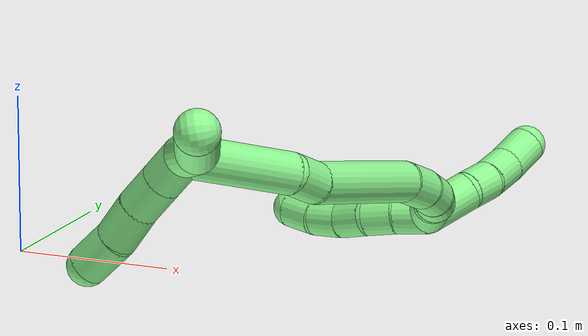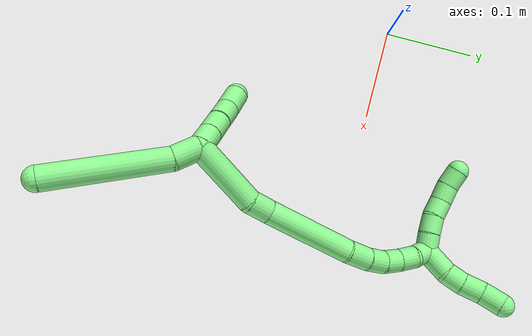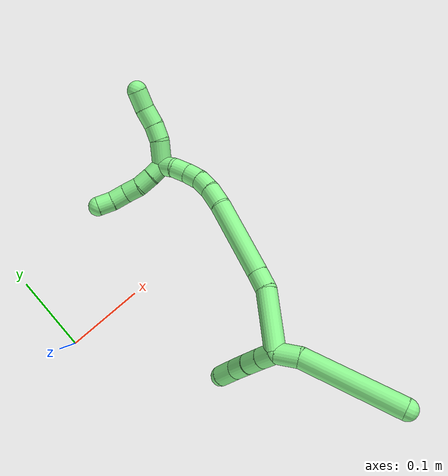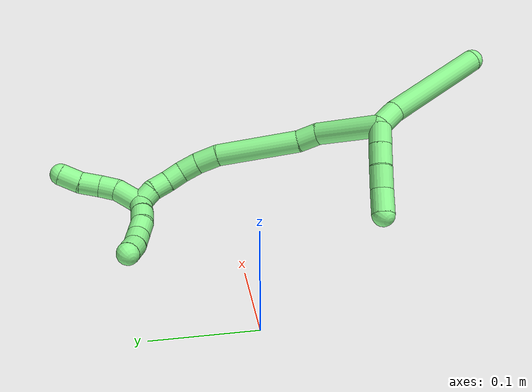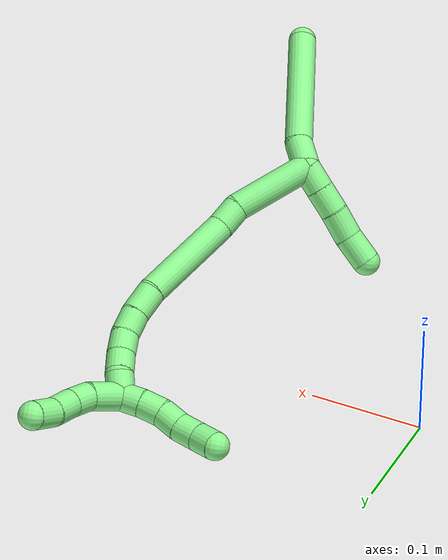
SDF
<sdf version="1.7">
 <world name="default">
  <model name="13">
   <static>0</static>
   <link name="13">
    <collision name="collision-cylinder-e_1_2_8">
     <pose>-0.005099 -0.012525 0.004434 1.23054 -0.366438 -0.260451</pose>
     <geometry><cylinder><radius>0.0125</radius><length>0.028462</length></cylinder></geometry>
     <surface>
      <friction><ode><mu>1.16</mu><mu2>1.16</mu2><slip1>0</slip1><slip2>0</slip2></ode></friction>
      <contact><ode><kp>1e+06</kp><kd>1</kd><max_vel>0</max_vel><min_depth>0.001</min_depth></ode></contact>
     </surface>
    </collision>
    <visual name="visual-cylinder-e_1_2_8">
     <pose>-0.005099 -0.012525 0.004434 1.23054 -0.366438 -0.260451</pose>
     <geometry><cylinder><radius>0.0125</radius><length>0.028462</length></cylinder></geometry>
     <material><ambient>0.564706 0.984314 0.572549 1</ambient></material>
    </visual>
    <collision name="collision-cylinder-e_2_8_6">
     <pose>-0.035852 -0.080027 0.012361 1.50736 -0.435826 -0.409786</pose>
     <geometry><cylinder><radius>0.0125</radius><length>0.121538</length></cylinder></geometry>
     <surface>
      <friction><ode><mu>1.16</mu><mu2>1.16</mu2><slip1>0</slip1><slip2>0</slip2></ode></friction>
      <contact><ode><kp>1e+06</kp><kd>1</kd><max_vel>0</max_vel><min_depth>0.001</min_depth></ode></contact>
     </surface>
    </collision>
    <visual name="visual-cylinder-e_2_8_6">
     <pose>-0.035852 -0.080027 0.012361 1.50736 -0.435826 -0.409786</pose>
     <geometry><cylinder><radius>0.0125</radius><length>0.121538</length></cylinder></geometry>
     <material><ambient>0.564706 0.984314 0.572549 1</ambient></material>
    </visual>
    <collision name="collision-cylinder-e_1_2_9">
     <pose>0.00769 0.003794 -0.007492 -2.6728 0.741395 -2.03975</pose>
     <geometry><cylinder><radius>0.0125</radius><length>0.022774</length></cylinder></geometry>
     <surface>
      <friction><ode><mu>1.16</mu><mu2>1.16</mu2><slip1>0</slip1><slip2>0</slip2></ode></friction>
      <contact><ode><kp>1e+06</kp><kd>1</kd><max_vel>0</max_vel><min_depth>0.001</min_depth></ode></contact>
     </surface>
    </collision>
    <visual name="visual-cylinder-e_1_2_9">
     <pose>0.00769 0.003794 -0.007492 -2.6728 0.741395 -2.03975</pose>
     <geometry><cylinder><radius>0.0125</radius><length>0.022774</length></cylinder></geometry>
     <material><ambient>0.564706 0.984314 0.572549 1</ambient></material>
    </visual>
    <collision name="collision-cylinder-e_2_9_10">
     <pose>0.023481 0.011344 -0.022983 -2.70263 0.742027 -2.1003</pose>
     <geometry><cylinder><radius>0.0125</radius><length>0.023975</length></cylinder></geometry>
     <surface>
      <friction><ode><mu>1.16</mu><mu2>1.16</mu2><slip1>0</slip1><slip2>0</slip2></ode></friction>
      <contact><ode><kp>1e+06</kp><kd>1</kd><max_vel>0</max_vel><min_depth>0.001</min_depth></ode></contact>
     </surface>
    </collision>
    <visual name="visual-cylinder-e_2_9_10">
     <pose>0.023481 0.011344 -0.022983 -2.70263 0.742027 -2.1003</pose>
     <geometry><cylinder><radius>0.0125</radius><length>0.023975</length></cylinder></geometry>
     <material><ambient>0.564706 0.984314 0.572549 1</ambient></material>
    </visual>
    <collision name="collision-cylinder-e_3_10_11">
     <pose>0.041158 0.01829 -0.03908 -2.76636 0.833064 -2.3309</pose>
     <geometry><cylinder><radius>0.0125</radius><length>0.025883</length></cylinder></geometry>
     <surface>
      <friction><ode><mu>1.16</mu><mu2>1.16</mu2><slip1>0</slip1><slip2>0</slip2></ode></friction>
      <contact><ode><kp>1e+06</kp><kd>1</kd><max_vel>0</max_vel><min_depth>0.001</min_depth></ode></contact>
     </surface>
    </collision>
    <visual name="visual-cylinder-e_3_10_11">
     <pose>0.041158 0.01829 -0.03908 -2.76636 0.833064 -2.3309</pose>
     <geometry><cylinder><radius>0.0125</radius><length>0.025883</length></cylinder></geometry>
     <material><ambient>0.564706 0.984314 0.572549 1</ambient></material>
    </visual>
    <collision name="collision-cylinder-e_4_11_5">
     <pose>0.059236 0.02604 -0.056884 -2.70228 0.670302 -2.00153</pose>
     <geometry><cylinder><radius>0.0125</radius><length>0.027368</length></cylinder></geometry>
     <surface>
      <friction><ode><mu>1.16</mu><mu2>1.16</mu2><slip1>0</slip1><slip2>0</slip2></ode></friction>
      <contact><ode><kp>1e+06</kp><kd>1</kd><max_vel>0</max_vel><min_depth>0.001</min_depth></ode></contact>
     </surface>
    </collision>
    <visual name="visual-cylinder-e_4_11_5">
     <pose>0.059236 0.02604 -0.056884 -2.70228 0.670302 -2.00153</pose>
     <geometry><cylinder><radius>0.0125</radius><length>0.027368</length></cylinder></geometry>
     <material><ambient>0.564706 0.984314 0.572549 1</ambient></material>
    </visual>
    <collision name="collision-cylinder-e_1_2_12">
     <pose>0.016791 0.017148 0.028135 -0.547359 0.471299 -0.134606</pose>
     <geometry><cylinder><radius>0.0125</radius><length>0.073962</length></cylinder></geometry>
     <surface>
      <friction><ode><mu>1.16</mu><mu2>1.16</mu2><slip1>0</slip1><slip2>0</slip2></ode></friction>
      <contact><ode><kp>1e+06</kp><kd>1</kd><max_vel>0</max_vel><min_depth>0.001</min_depth></ode></contact>
     </surface>
    </collision>
    <visual name="visual-cylinder-e_1_2_12">
     <pose>0.016791 0.017148 0.028135 -0.547359 0.471299 -0.134606</pose>
     <geometry><cylinder><radius>0.0125</radius><length>0.073962</length></cylinder></geometry>
     <material><ambient>0.564706 0.984314 0.572549 1</ambient></material>
    </visual>
    <collision name="collision-cylinder-e_2_12_13">
     <pose>0.040463 0.041983 0.062278 -0.907491 0.614263 -0.306922</pose>
     <geometry><cylinder><radius>0.0125</radius><length>0.023877</length></cylinder></geometry>
     <surface>
      <friction><ode><mu>1.16</mu><mu2>1.16</mu2><slip1>0</slip1><slip2>0</slip2></ode></friction>
      <contact><ode><kp>1e+06</kp><kd>1</kd><max_vel>0</max_vel><min_depth>0.001</min_depth></ode></contact>
     </surface>
    </collision>
    <visual name="visual-cylinder-e_2_12_13">
     <pose>0.040463 0.041983 0.062278 -0.907491 0.614263 -0.306922</pose>
     <geometry><cylinder><radius>0.0125</radius><length>0.023877</length></cylinder></geometry>
     <material><ambient>0.564706 0.984314 0.572549 1</ambient></material>
    </visual>
    <collision name="collision-cylinder-e_3_13_14">
     <pose>0.06514 0.085136 0.09406 -0.942335 0.385588 -0.198251</pose>
     <geometry><cylinder><radius>0.0125</radius><length>0.094631</length></cylinder></geometry>
     <surface>
      <friction><ode><mu>1.16</mu><mu2>1.16</mu2><slip1>0</slip1><slip2>0</slip2></ode></friction>
      <contact><ode><kp>1e+06</kp><kd>1</kd><max_vel>0</max_vel><min_depth>0.001</min_depth></ode></contact>
     </surface>
    </collision>
    <visual name="visual-cylinder-e_3_13_14">
     <pose>0.06514 0.085136 0.09406 -0.942335 0.385588 -0.198251</pose>
     <geometry><cylinder><radius>0.0125</radius><length>0.094631</length></cylinder></geometry>
     <material><ambient>0.564706 0.984314 0.572549 1</ambient></material>
    </visual>
    <collision name="collision-cylinder-e_4_14_15">
     <pose>0.089913 0.129891 0.125395 -1.03146 0.572467 -0.330652</pose>
     <geometry><cylinder><radius>0.0125</radius><length>0.025762</length></cylinder></geometry>
     <surface>
      <friction><ode><mu>1.16</mu><mu2>1.16</mu2><slip1>0</slip1><slip2>0</slip2></ode></friction>
      <contact><ode><kp>1e+06</kp><kd>1</kd><max_vel>0</max_vel><min_depth>0.001</min_depth></ode></contact>
     </surface>
    </collision>
    <visual name="visual-cylinder-e_4_14_15">
     <pose>0.089913 0.129891 0.125395 -1.03146 0.572467 -0.330652</pose>
     <geometry><cylinder><radius>0.0125</radius><length>0.025762</length></cylinder></geometry>
     <material><ambient>0.564706 0.984314 0.572549 1</ambient></material>
    </visual>
    <collision name="collision-cylinder-e_5_15_16">
     <pose>0.103162 0.14728 0.133934 -1.21833 0.62854 -0.446007</pose>
     <geometry><cylinder><radius>0.0125</radius><length>0.021334</length></cylinder></geometry>
     <surface>
      <friction><ode><mu>1.16</mu><mu2>1.16</mu2><slip1>0</slip1><slip2>0</slip2></ode></friction>
      <contact><ode><kp>1e+06</kp><kd>1</kd><max_vel>0</max_vel><min_depth>0.001</min_depth></ode></contact>
     </surface>
    </collision>
    <visual name="visual-cylinder-e_5_15_16">
     <pose>0.103162 0.14728 0.133934 -1.21833 0.62854 -0.446007</pose>
     <geometry><cylinder><radius>0.0125</radius><length>0.021334</length></cylinder></geometry>
     <material><ambient>0.564706 0.984314 0.572549 1</ambient></material>
    </visual>
    <collision name="collision-cylinder-e_6_16_17">
     <pose>0.114798 0.163942 0.137303 -1.5253 0.559024 -0.53535</pose>
     <geometry><cylinder><radius>0.0125</radius><length>0.020226</length></cylinder></geometry>
     <surface>
      <friction><ode><mu>1.16</mu><mu2>1.16</mu2><slip1>0</slip1><slip2>0</slip2></ode></friction>
      <contact><ode><kp>1e+06</kp><kd>1</kd><max_vel>0</max_vel><min_depth>0.001</min_depth></ode></contact>
     </surface>
    </collision>
    <visual name="visual-cylinder-e_6_16_17">
     <pose>0.114798 0.163942 0.137303 -1.5253 0.559024 -0.53535</pose>
     <geometry><cylinder><radius>0.0125</radius><length>0.020226</length></cylinder></geometry>
     <material><ambient>0.564706 0.984314 0.572549 1</ambient></material>
    </visual>
    <collision name="collision-cylinder-e_7_17_18">
     <pose>0.124061 0.181736 0.137182 -1.62608 0.399247 -0.421305</pose>
     <geometry><cylinder><radius>0.0125</radius><length>0.020063</length></cylinder></geometry>
     <surface>
      <friction><ode><mu>1.16</mu><mu2>1.16</mu2><slip1>0</slip1><slip2>0</slip2></ode></friction>
      <contact><ode><kp>1e+06</kp><kd>1</kd><max_vel>0</max_vel><min_depth>0.001</min_depth></ode></contact>
     </surface>
    </collision>
    <visual name="visual-cylinder-e_7_17_18">
     <pose>0.124061 0.181736 0.137182 -1.62608 0.399247 -0.421305</pose>
     <geometry><cylinder><radius>0.0125</radius><length>0.020063</length></cylinder></geometry>
     <material><ambient>0.564706 0.984314 0.572549 1</ambient></material>
    </visual>
    <collision name="collision-cylinder-e_8_18_1">
     <pose>0.134218 0.198582 0.13461 -1.83506 0.670369 -0.854193</pose>
     <geometry><cylinder><radius>0.0125</radius><length>0.020144</length></cylinder></geometry>
     <surface>
      <friction><ode><mu>1.16</mu><mu2>1.16</mu2><slip1>0</slip1><slip2>0</slip2></ode></friction>
      <contact><ode><kp>1e+06</kp><kd>1</kd><max_vel>0</max_vel><min_depth>0.001</min_depth></ode></contact>
     </surface>
    </collision>
    <visual name="visual-cylinder-e_8_18_1">
     <pose>0.134218 0.198582 0.13461 -1.83506 0.670369 -0.854193</pose>
     <geometry><cylinder><radius>0.0125</radius><length>0.020144</length></cylinder></geometry>
     <material><ambient>0.564706 0.984314 0.572549 1</ambient></material>
    </visual>
    <collision name="collision-cylinder-e_1_1_19">
     <pose>0.138133 0.214449 0.146171 -0.544442 -0.146017 0.040828</pose>
     <geometry><cylinder><radius>0.0125</radius><length>0.032194</length></cylinder></geometry>
     <surface>
      <friction><ode><mu>1.16</mu><mu2>1.16</mu2><slip1>0</slip1><slip2>0</slip2></ode></friction>
      <contact><ode><kp>1e+06</kp><kd>1</kd><max_vel>0</max_vel><min_depth>0.001</min_depth></ode></contact>
     </surface>
    </collision>
    <visual name="visual-cylinder-e_1_1_19">
     <pose>0.138133 0.214449 0.146171 -0.544442 -0.146017 0.040828</pose>
     <geometry><cylinder><radius>0.0125</radius><length>0.032194</length></cylinder></geometry>
     <material><ambient>0.564706 0.984314 0.572549 1</ambient></material>
    </visual>
    <collision name="collision-cylinder-e_2_19_20">
     <pose>0.136117 0.229932 0.166811 -0.800674 0.032304 -0.013672</pose>
     <geometry><cylinder><radius>0.0125</radius><length>0.020166</length></cylinder></geometry>
     <surface>
      <friction><ode><mu>1.16</mu><mu2>1.16</mu2><slip1>0</slip1><slip2>0</slip2></ode></friction>
      <contact><ode><kp>1e+06</kp><kd>1</kd><max_vel>0</max_vel><min_depth>0.001</min_depth></ode></contact>
     </surface>
    </collision>
    <visual name="visual-cylinder-e_2_19_20">
     <pose>0.136117 0.229932 0.166811 -0.800674 0.032304 -0.013672</pose>
     <geometry><cylinder><radius>0.0125</radius><length>0.020166</length></cylinder></geometry>
     <material><ambient>0.564706 0.984314 0.572549 1</ambient></material>
    </visual>
    <collision name="collision-cylinder-e_3_20_21">
     <pose>0.136282 0.246776 0.18053 -0.961755 -0.013699 0.007147</pose>
     <geometry><cylinder><radius>0.0125</radius><length>0.023434</length></cylinder></geometry>
     <surface>
      <friction><ode><mu>1.16</mu><mu2>1.16</mu2><slip1>0</slip1><slip2>0</slip2></ode></friction>
      <contact><ode><kp>1e+06</kp><kd>1</kd><max_vel>0</max_vel><min_depth>0.001</min_depth></ode></contact>
     </surface>
    </collision>
    <visual name="visual-cylinder-e_3_20_21">
     <pose>0.136282 0.246776 0.18053 -0.961755 -0.013699 0.007147</pose>
     <geometry><cylinder><radius>0.0125</radius><length>0.023434</length></cylinder></geometry>
     <material><ambient>0.564706 0.984314 0.572549 1</ambient></material>
    </visual>
    <collision name="collision-cylinder-e_4_21_4">
     <pose>0.133717 0.265256 0.195107 -0.844861 -0.200036 0.090154</pose>
     <geometry><cylinder><radius>0.0125</radius><length>0.024205</length></cylinder></geometry>
     <surface>
      <friction><ode><mu>1.16</mu><mu2>1.16</mu2><slip1>0</slip1><slip2>0</slip2></ode></friction>
      <contact><ode><kp>1e+06</kp><kd>1</kd><max_vel>0</max_vel><min_depth>0.001</min_depth></ode></contact>
     </surface>
    </collision>
    <visual name="visual-cylinder-e_4_21_4">
     <pose>0.133717 0.265256 0.195107 -0.844861 -0.200036 0.090154</pose>
     <geometry><cylinder><radius>0.0125</radius><length>0.024205</length></cylinder></geometry>
     <material><ambient>0.564706 0.984314 0.572549 1</ambient></material>
    </visual>
    <collision name="collision-cylinder-e_1_1_22">
     <pose>0.140234 0.20963 0.123158 -2.79142 -0.024135 0.136229</pose>
     <geometry><cylinder><radius>0.0125</radius><length>0.02</length></cylinder></geometry>
     <surface>
      <friction><ode><mu>1.16</mu><mu2>1.16</mu2><slip1>0</slip1><slip2>0</slip2></ode></friction>
      <contact><ode><kp>1e+06</kp><kd>1</kd><max_vel>0</max_vel><min_depth>0.001</min_depth></ode></contact>
     </surface>
    </collision>
    <visual name="visual-cylinder-e_1_1_22">
     <pose>0.140234 0.20963 0.123158 -2.79142 -0.024135 0.136229</pose>
     <geometry><cylinder><radius>0.0125</radius><length>0.02</length></cylinder></geometry>
     <material><ambient>0.564706 0.984314 0.572549 1</ambient></material>
    </visual>
    <collision name="collision-cylinder-e_2_22_23">
     <pose>0.140671 0.217168 0.104675 -2.71725 0.067882 -0.312673</pose>
     <geometry><cylinder><radius>0.0125</radius><length>0.02</length></cylinder></geometry>
     <surface>
      <friction><ode><mu>1.16</mu><mu2>1.16</mu2><slip1>0</slip1><slip2>0</slip2></ode></friction>
      <contact><ode><kp>1e+06</kp><kd>1</kd><max_vel>0</max_vel><min_depth>0.001</min_depth></ode></contact>
     </surface>
    </collision>
    <visual name="visual-cylinder-e_2_22_23">
     <pose>0.140671 0.217168 0.104675 -2.71725 0.067882 -0.312673</pose>
     <geometry><cylinder><radius>0.0125</radius><length>0.02</length></cylinder></geometry>
     <material><ambient>0.564706 0.984314 0.572549 1</ambient></material>
    </visual>
    <collision name="collision-cylinder-e_3_23_24">
     <pose>0.143164 0.227216 0.087746 -2.49302 0.182499 -0.531537</pose>
     <geometry><cylinder><radius>0.0125</radius><length>0.02</length></cylinder></geometry>
     <surface>
      <friction><ode><mu>1.16</mu><mu2>1.16</mu2><slip1>0</slip1><slip2>0</slip2></ode></friction>
      <contact><ode><kp>1e+06</kp><kd>1</kd><max_vel>0</max_vel><min_depth>0.001</min_depth></ode></contact>
     </surface>
    </collision>
    <visual name="visual-cylinder-e_3_23_24">
     <pose>0.143164 0.227216 0.087746 -2.49302 0.182499 -0.531537</pose>
     <geometry><cylinder><radius>0.0125</radius><length>0.02</length></cylinder></geometry>
     <material><ambient>0.564706 0.984314 0.572549 1</ambient></material>
    </visual>
    <collision name="collision-cylinder-e_4_24_25">
     <pose>0.144949 0.238868 0.071701 -2.53355 -0.002979 0.009495</pose>
     <geometry><cylinder><radius>0.0125</radius><length>0.02</length></cylinder></geometry>
     <surface>
      <friction><ode><mu>1.16</mu><mu2>1.16</mu2><slip1>0</slip1><slip2>0</slip2></ode></friction>
      <contact><ode><kp>1e+06</kp><kd>1</kd><max_vel>0</max_vel><min_depth>0.001</min_depth></ode></contact>
     </surface>
    </collision>
    <visual name="visual-cylinder-e_4_24_25">
     <pose>0.144949 0.238868 0.071701 -2.53355 -0.002979 0.009495</pose>
     <geometry><cylinder><radius>0.0125</radius><length>0.02</length></cylinder></geometry>
     <material><ambient>0.564706 0.984314 0.572549 1</ambient></material>
    </visual>
    <collision name="collision-cylinder-e_5_25_3">
     <pose>0.143615 0.251541 0.056432 -2.36345 -0.130801 0.316828</pose>
     <geometry><cylinder><radius>0.0125</radius><length>0.02</length></cylinder></geometry>
     <surface>
      <friction><ode><mu>1.16</mu><mu2>1.16</mu2><slip1>0</slip1><slip2>0</slip2></ode></friction>
      <contact><ode><kp>1e+06</kp><kd>1</kd><max_vel>0</max_vel><min_depth>0.001</min_depth></ode></contact>
     </surface>
    </collision>
    <visual name="visual-cylinder-e_5_25_3">
     <pose>0.143615 0.251541 0.056432 -2.36345 -0.130801 0.316828</pose>
     <geometry><cylinder><radius>0.0125</radius><length>0.02</length></cylinder></geometry>
     <material><ambient>0.564706 0.984314 0.572549 1</ambient></material>
    </visual>
    <collision name="collision-sphere-3">
     <pose>0.142311 0.2585 0.049371 0 -0 0</pose>
     <geometry><sphere><radius>0.0125</radius></sphere></geometry>
     <surface>
      <friction><ode><mu>1.16</mu><mu2>1.16</mu2><slip1>0</slip1><slip2>0</slip2></ode></friction>
      <contact><ode><kp>1e+06</kp><kd>1</kd><max_vel>0</max_vel><min_depth>0.001</min_depth></ode></contact>
     </surface>
    </collision>
    <visual name="visual-sphere-3">
     <pose>0.142311 0.2585 0.049371 0 -0 0</pose>
     <geometry><sphere><radius>0.0125</radius></sphere></geometry>
     <material><ambient>0.564706 0.984314 0.572549 1</ambient></material>
    </visual>
    <collision name="collision-sphere-25">
     <pose>0.144919 0.244581 0.063494 0 -0 0</pose>
     <geometry><sphere><radius>0.0125</radius></sphere></geometry>
     <surface>
      <friction><ode><mu>1.16</mu><mu2>1.16</mu2><slip1>0</slip1><slip2>0</slip2></ode></friction>
      <contact><ode><kp>1e+06</kp><kd>1</kd><max_vel>0</max_vel><min_depth>0.001</min_depth></ode></contact>
     </surface>
    </collision>
    <visual name="visual-sphere-25">
     <pose>0.144919 0.244581 0.063494 0 -0 0</pose>
     <geometry><sphere><radius>0.0125</radius></sphere></geometry>
     <material><ambient>0.564706 0.984314 0.572549 1</ambient></material>
    </visual>
    <collision name="collision-sphere-24">
     <pose>0.144979 0.233156 0.079909 0 -0 0</pose>
     <geometry><sphere><radius>0.0125</radius></sphere></geometry>
     <surface>
      <friction><ode><mu>1.16</mu><mu2>1.16</mu2><slip1>0</slip1><slip2>0</slip2></ode></friction>
      <contact><ode><kp>1e+06</kp><kd>1</kd><max_vel>0</max_vel><min_depth>0.001</min_depth></ode></contact>
     </surface>
    </collision>
    <visual name="visual-sphere-24">
     <pose>0.144979 0.233156 0.079909 0 -0 0</pose>
     <geometry><sphere><radius>0.0125</radius></sphere></geometry>
     <material><ambient>0.564706 0.984314 0.572549 1</ambient></material>
    </visual>
    <collision name="collision-sphere-23">
     <pose>0.141349 0.221275 0.095583 0 -0 0</pose>
     <geometry><sphere><radius>0.0125</radius></sphere></geometry>
     <surface>
      <friction><ode><mu>1.16</mu><mu2>1.16</mu2><slip1>0</slip1><slip2>0</slip2></ode></friction>
      <contact><ode><kp>1e+06</kp><kd>1</kd><max_vel>0</max_vel><min_depth>0.001</min_depth></ode></contact>
     </surface>
    </collision>
    <visual name="visual-sphere-23">
     <pose>0.141349 0.221275 0.095583 0 -0 0</pose>
     <geometry><sphere><radius>0.0125</radius></sphere></geometry>
     <material><ambient>0.564706 0.984314 0.572549 1</ambient></material>
    </visual>
    <collision name="collision-sphere-22">
     <pose>0.139993 0.21306 0.113767 0 -0 0</pose>
     <geometry><sphere><radius>0.0125</radius></sphere></geometry>
     <surface>
      <friction><ode><mu>1.16</mu><mu2>1.16</mu2><slip1>0</slip1><slip2>0</slip2></ode></friction>
      <contact><ode><kp>1e+06</kp><kd>1</kd><max_vel>0</max_vel><min_depth>0.001</min_depth></ode></contact>
     </surface>
    </collision>
    <visual name="visual-sphere-22">
     <pose>0.139993 0.21306 0.113767 0 -0 0</pose>
     <geometry><sphere><radius>0.0125</radius></sphere></geometry>
     <material><ambient>0.564706 0.984314 0.572549 1</ambient></material>
    </visual>
    <collision name="collision-sphere-4">
     <pose>0.131312 0.274127 0.20298 0 -0 0</pose>
     <geometry><sphere><radius>0.0125</radius></sphere></geometry>
     <surface>
      <friction><ode><mu>1.16</mu><mu2>1.16</mu2><slip1>0</slip1><slip2>0</slip2></ode></friction>
      <contact><ode><kp>1e+06</kp><kd>1</kd><max_vel>0</max_vel><min_depth>0.001</min_depth></ode></contact>
     </surface>
    </collision>
    <visual name="visual-sphere-4">
     <pose>0.131312 0.274127 0.20298 0 -0 0</pose>
     <geometry><sphere><radius>0.0125</radius></sphere></geometry>
     <material><ambient>0.564706 0.984314 0.572549 1</ambient></material>
    </visual>
    <collision name="collision-sphere-21">
     <pose>0.136121 0.256385 0.187233 0 -0 0</pose>
     <geometry><sphere><radius>0.0125</radius></sphere></geometry>
     <surface>
      <friction><ode><mu>1.16</mu><mu2>1.16</mu2><slip1>0</slip1><slip2>0</slip2></ode></friction>
      <contact><ode><kp>1e+06</kp><kd>1</kd><max_vel>0</max_vel><min_depth>0.001</min_depth></ode></contact>
     </surface>
    </collision>
    <visual name="visual-sphere-21">
     <pose>0.136121 0.256385 0.187233 0 -0 0</pose>
     <geometry><sphere><radius>0.0125</radius></sphere></geometry>
     <material><ambient>0.564706 0.984314 0.572549 1</ambient></material>
    </visual>
    <collision name="collision-sphere-20">
     <pose>0.136442 0.237166 0.173828 0 -0 0</pose>
     <geometry><sphere><radius>0.0125</radius></sphere></geometry>
     <surface>
      <friction><ode><mu>1.16</mu><mu2>1.16</mu2><slip1>0</slip1><slip2>0</slip2></ode></friction>
      <contact><ode><kp>1e+06</kp><kd>1</kd><max_vel>0</max_vel><min_depth>0.001</min_depth></ode></contact>
     </surface>
    </collision>
    <visual name="visual-sphere-20">
     <pose>0.136442 0.237166 0.173828 0 -0 0</pose>
     <geometry><sphere><radius>0.0125</radius></sphere></geometry>
     <material><ambient>0.564706 0.984314 0.572549 1</ambient></material>
    </visual>
    <collision name="collision-sphere-11">
     <pose>0.050735 0.02148 -0.047179 0 -0 0</pose>
     <geometry><sphere><radius>0.0125</radius></sphere></geometry>
     <surface>
      <friction><ode><mu>1.16</mu><mu2>1.16</mu2><slip1>0</slip1><slip2>0</slip2></ode></friction>
      <contact><ode><kp>1e+06</kp><kd>1</kd><max_vel>0</max_vel><min_depth>0.001</min_depth></ode></contact>
     </surface>
    </collision>
    <visual name="visual-sphere-11">
     <pose>0.050735 0.02148 -0.047179 0 -0 0</pose>
     <geometry><sphere><radius>0.0125</radius></sphere></geometry>
     <material><ambient>0.564706 0.984314 0.572549 1</ambient></material>
    </visual>
    <collision name="collision-sphere-10">
     <pose>0.031582 0.015099 -0.030981 0 -0 0</pose>
     <geometry><sphere><radius>0.0125</radius></sphere></geometry>
     <surface>
      <friction><ode><mu>1.16</mu><mu2>1.16</mu2><slip1>0</slip1><slip2>0</slip2></ode></friction>
      <contact><ode><kp>1e+06</kp><kd>1</kd><max_vel>0</max_vel><min_depth>0.001</min_depth></ode></contact>
     </surface>
    </collision>
    <visual name="visual-sphere-10">
     <pose>0.031582 0.015099 -0.030981 0 -0 0</pose>
     <geometry><sphere><radius>0.0125</radius></sphere></geometry>
     <material><ambient>0.564706 0.984314 0.572549 1</ambient></material>
    </visual>
    <collision name="collision-sphere-6">
     <pose>-0.061506 -0.135004 0.015853 0 -0 0</pose>
     <geometry><sphere><radius>0.0125</radius></sphere></geometry>
     <surface>
      <friction><ode><mu>1.16</mu><mu2>1.16</mu2><slip1>0</slip1><slip2>0</slip2></ode></friction>
      <contact><ode><kp>1e+06</kp><kd>1</kd><max_vel>0</max_vel><min_depth>0.001</min_depth></ode></contact>
     </surface>
    </collision>
    <visual name="visual-sphere-6">
     <pose>-0.061506 -0.135004 0.015853 0 -0 0</pose>
     <geometry><sphere><radius>0.0125</radius></sphere></geometry>
     <material><ambient>0.564706 0.984314 0.572549 1</ambient></material>
    </visual>
    <collision name="collision-sphere-9">
     <pose>0.01538 0.007589 -0.014984 0 -0 0</pose>
     <geometry><sphere><radius>0.0125</radius></sphere></geometry>
     <surface>
      <friction><ode><mu>1.16</mu><mu2>1.16</mu2><slip1>0</slip1><slip2>0</slip2></ode></friction>
      <contact><ode><kp>1e+06</kp><kd>1</kd><max_vel>0</max_vel><min_depth>0.001</min_depth></ode></contact>
     </surface>
    </collision>
    <visual name="visual-sphere-9">
     <pose>0.01538 0.007589 -0.014984 0 -0 0</pose>
     <geometry><sphere><radius>0.0125</radius></sphere></geometry>
     <material><ambient>0.564706 0.984314 0.572549 1</ambient></material>
    </visual>
    <collision name="collision-sphere-2">
     <geometry><sphere><radius>0.0125</radius></sphere></geometry>
     <surface>
      <friction><ode><mu>1.16</mu><mu2>1.16</mu2><slip1>0</slip1><slip2>0</slip2></ode></friction>
      <contact><ode><kp>1e+06</kp><kd>1</kd><max_vel>0</max_vel><min_depth>0.001</min_depth></ode></contact>
     </surface>
    </collision>
    <visual name="visual-sphere-2">
     <geometry><sphere><radius>0.0125</radius></sphere></geometry>
     <material><ambient>0.564706 0.984314 0.572549 1</ambient></material>
    </visual>
    <collision name="collision-sphere-19">
     <pose>0.135791 0.222698 0.159795 0 -0 0</pose>
     <geometry><sphere><radius>0.0125</radius></sphere></geometry>
     <surface>
      <friction><ode><mu>1.16</mu><mu2>1.16</mu2><slip1>0</slip1><slip2>0</slip2></ode></friction>
      <contact><ode><kp>1e+06</kp><kd>1</kd><max_vel>0</max_vel><min_depth>0.001</min_depth></ode></contact>
     </surface>
    </collision>
    <visual name="visual-sphere-19">
     <pose>0.135791 0.222698 0.159795 0 -0 0</pose>
     <geometry><sphere><radius>0.0125</radius></sphere></geometry>
     <material><ambient>0.564706 0.984314 0.572549 1</ambient></material>
    </visual>
    <collision name="collision-sphere-8">
     <pose>-0.010198 -0.025049 0.008868 0 -0 0</pose>
     <geometry><sphere><radius>0.0125</radius></sphere></geometry>
     <surface>
      <friction><ode><mu>1.16</mu><mu2>1.16</mu2><slip1>0</slip1><slip2>0</slip2></ode></friction>
      <contact><ode><kp>1e+06</kp><kd>1</kd><max_vel>0</max_vel><min_depth>0.001</min_depth></ode></contact>
     </surface>
    </collision>
    <visual name="visual-sphere-8">
     <pose>-0.010198 -0.025049 0.008868 0 -0 0</pose>
     <geometry><sphere><radius>0.0125</radius></sphere></geometry>
     <material><ambient>0.564706 0.984314 0.572549 1</ambient></material>
    </visual>
    <collision name="collision-sphere-5">
     <pose>0.067737 0.030601 -0.066589 0 -0 0</pose>
     <geometry><sphere><radius>0.0125</radius></sphere></geometry>
     <surface>
      <friction><ode><mu>1.16</mu><mu2>1.16</mu2><slip1>0</slip1><slip2>0</slip2></ode></friction>
      <contact><ode><kp>1e+06</kp><kd>1</kd><max_vel>0</max_vel><min_depth>0.001</min_depth></ode></contact>
     </surface>
    </collision>
    <visual name="visual-sphere-5">
     <pose>0.067737 0.030601 -0.066589 0 -0 0</pose>
     <geometry><sphere><radius>0.0125</radius></sphere></geometry>
     <material><ambient>0.564706 0.984314 0.572549 1</ambient></material>
    </visual>
    <collision name="collision-sphere-12">
     <pose>0.033582 0.034296 0.056271 0 -0 0</pose>
     <geometry><sphere><radius>0.0125</radius></sphere></geometry>
     <surface>
      <friction><ode><mu>1.16</mu><mu2>1.16</mu2><slip1>0</slip1><slip2>0</slip2></ode></friction>
      <contact><ode><kp>1e+06</kp><kd>1</kd><max_vel>0</max_vel><min_depth>0.001</min_depth></ode></contact>
     </surface>
    </collision>
    <visual name="visual-sphere-12">
     <pose>0.033582 0.034296 0.056271 0 -0 0</pose>
     <geometry><sphere><radius>0.0125</radius></sphere></geometry>
     <material><ambient>0.564706 0.984314 0.572549 1</ambient></material>
    </visual>
    <collision name="collision-sphere-13">
     <pose>0.047344 0.049671 0.068285 0 -0 0</pose>
     <geometry><sphere><radius>0.0125</radius></sphere></geometry>
     <surface>
      <friction><ode><mu>1.16</mu><mu2>1.16</mu2><slip1>0</slip1><slip2>0</slip2></ode></friction>
      <contact><ode><kp>1e+06</kp><kd>1</kd><max_vel>0</max_vel><min_depth>0.001</min_depth></ode></contact>
     </surface>
    </collision>
    <visual name="visual-sphere-13">
     <pose>0.047344 0.049671 0.068285 0 -0 0</pose>
     <geometry><sphere><radius>0.0125</radius></sphere></geometry>
     <material><ambient>0.564706 0.984314 0.572549 1</ambient></material>
    </visual>
    <collision name="collision-sphere-14">
     <pose>0.082935 0.120601 0.119834 0 -0 0</pose>
     <geometry><sphere><radius>0.0125</radius></sphere></geometry>
     <surface>
      <friction><ode><mu>1.16</mu><mu2>1.16</mu2><slip1>0</slip1><slip2>0</slip2></ode></friction>
      <contact><ode><kp>1e+06</kp><kd>1</kd><max_vel>0</max_vel><min_depth>0.001</min_depth></ode></contact>
     </surface>
    </collision>
    <visual name="visual-sphere-14">
     <pose>0.082935 0.120601 0.119834 0 -0 0</pose>
     <geometry><sphere><radius>0.0125</radius></sphere></geometry>
     <material><ambient>0.564706 0.984314 0.572549 1</ambient></material>
    </visual>
    <collision name="collision-sphere-15">
     <pose>0.096891 0.139182 0.130956 0 -0 0</pose>
     <geometry><sphere><radius>0.0125</radius></sphere></geometry>
     <surface>
      <friction><ode><mu>1.16</mu><mu2>1.16</mu2><slip1>0</slip1><slip2>0</slip2></ode></friction>
      <contact><ode><kp>1e+06</kp><kd>1</kd><max_vel>0</max_vel><min_depth>0.001</min_depth></ode></contact>
     </surface>
    </collision>
    <visual name="visual-sphere-15">
     <pose>0.096891 0.139182 0.130956 0 -0 0</pose>
     <geometry><sphere><radius>0.0125</radius></sphere></geometry>
     <material><ambient>0.564706 0.984314 0.572549 1</ambient></material>
    </visual>
    <collision name="collision-sphere-16">
     <pose>0.109434 0.155378 0.136913 0 -0 0</pose>
     <geometry><sphere><radius>0.0125</radius></sphere></geometry>
     <surface>
      <friction><ode><mu>1.16</mu><mu2>1.16</mu2><slip1>0</slip1><slip2>0</slip2></ode></friction>
      <contact><ode><kp>1e+06</kp><kd>1</kd><max_vel>0</max_vel><min_depth>0.001</min_depth></ode></contact>
     </surface>
    </collision>
    <visual name="visual-sphere-16">
     <pose>0.109434 0.155378 0.136913 0 -0 0</pose>
     <geometry><sphere><radius>0.0125</radius></sphere></geometry>
     <material><ambient>0.564706 0.984314 0.572549 1</ambient></material>
    </visual>
    <collision name="collision-sphere-17">
     <pose>0.120161 0.172507 0.137693 0 -0 0</pose>
     <geometry><sphere><radius>0.0125</radius></sphere></geometry>
     <surface>
      <friction><ode><mu>1.16</mu><mu2>1.16</mu2><slip1>0</slip1><slip2>0</slip2></ode></friction>
      <contact><ode><kp>1e+06</kp><kd>1</kd><max_vel>0</max_vel><min_depth>0.001</min_depth></ode></contact>
     </surface>
    </collision>
    <visual name="visual-sphere-17">
     <pose>0.120161 0.172507 0.137693 0 -0 0</pose>
     <geometry><sphere><radius>0.0125</radius></sphere></geometry>
     <material><ambient>0.564706 0.984314 0.572549 1</ambient></material>
    </visual>
    <collision name="collision-sphere-18">
     <pose>0.12796 0.190964 0.136671 0 -0 0</pose>
     <geometry><sphere><radius>0.0125</radius></sphere></geometry>
     <surface>
      <friction><ode><mu>1.16</mu><mu2>1.16</mu2><slip1>0</slip1><slip2>0</slip2></ode></friction>
      <contact><ode><kp>1e+06</kp><kd>1</kd><max_vel>0</max_vel><min_depth>0.001</min_depth></ode></contact>
     </surface>
    </collision>
    <visual name="visual-sphere-18">
     <pose>0.12796 0.190964 0.136671 0 -0 0</pose>
     <geometry><sphere><radius>0.0125</radius></sphere></geometry>
     <material><ambient>0.564706 0.984314 0.572549 1</ambient></material>
    </visual>
    <collision name="collision-sphere-1">
     <pose>0.140475 0.206201 0.132548 0 -0 0</pose>
     <geometry><sphere><radius>0.0125</radius></sphere></geometry>
     <surface>
      <friction><ode><mu>1.16</mu><mu2>1.16</mu2><slip1>0</slip1><slip2>0</slip2></ode></friction>
      <contact><ode><kp>1e+06</kp><kd>1</kd><max_vel>0</max_vel><min_depth>0.001</min_depth></ode></contact>
     </surface>
    </collision>
    <visual name="visual-sphere-1">
     <pose>0.140475 0.206201 0.132548 0 -0 0</pose>
     <geometry><sphere><radius>0.0125</radius></sphere></geometry>
     <material><ambient>0.564706 0.984314 0.572549 1</ambient></material>
    </visual>
    <inertial>
     <pose>0.062935 0.08783 0.068045 0 -0 0</pose>
     <mass>0.75</mass>
     <inertia><ixx>0.000178</ixx><ixy>0</ixy><ixz>0</ixz><iyy>6.2e-05</iyy><iyz>0</iyz><izz>6.5e-05</izz></inertia>
    </inertial>
   </link>
   <pose>0.18413 -0.160181 0.118621 0.576547 1.38109 0.99817</pose>
  </model>
 </world>
</sdf>
